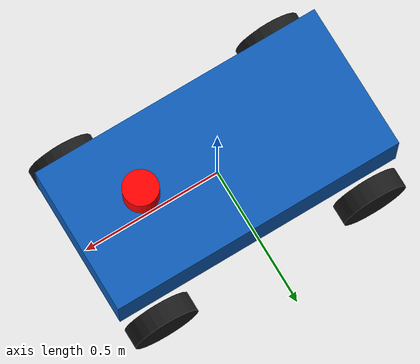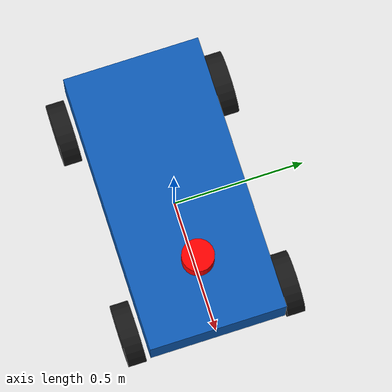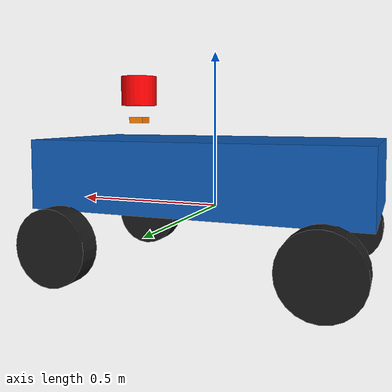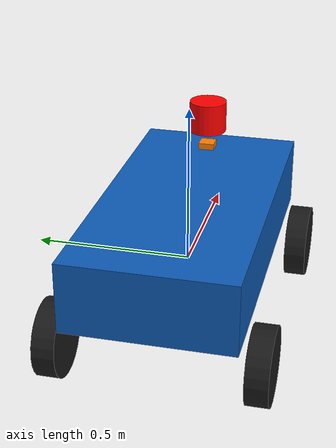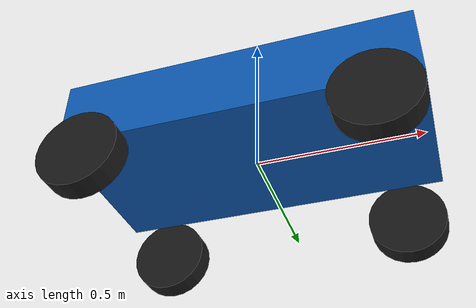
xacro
<?xml version="1.0"?>
<robot xmlns:xacro="http://www.ros.org/wiki/xacro" name="my_robot">

  <!-- base_link (каркаc машины) params -->
  <xacro:property name="base_length" value="1.05"/>
  <xacro:property name="base_width" value="0.52"/>
  <xacro:property name="base_height" value="0.22"/>

  <xacro:property name="base_mass" value="12.0" />

  <!-- моменты инерции (сопротивление ВОКРУГ заданной оси) (>0) -->
  <!--
    точный коэффициент пропорциональности между приложенным моментом силы и resulting угловым ускорением.
    ixx = ∫ρ(y^2+z^2)dV, ρ*dV = mass (мин.часть)
   -->
  <xacro:property name="base_ixx" value="0.55" />
  <xacro:property name="base_iyy" value="1.10" />
  <xacro:property name="base_izz" value="1.40" />

  <!-- ixy, ixz, iyz - центробежные моменты (не ограниен)-->
  <!--
    мера асимметрии распределения массы относительно осей координат:
    ixy = −∫ρ⋅x⋅ydV
    =0, при условии симметрии объекта
  -->

  <!-- каркас машины -->
  <link name="base_link">

    <!-- визуал -->
    <visual>
      <!-- координаты base_link -->
      <origin xyz="0 0 ${base_height / 2.0}" rpy="0.0 0.0 0.0"/>

      <!-- размерность каркаса -->
      <geometry>
        <box size="${base_length} ${base_width} ${base_height}"/>
      </geometry>
      <!-- материал и цвет -->
      <material name="base_blue">
        <color rgba="0.05 0.36 0.72 1.0"/>
      </material>
    </visual>

    <!-- коллизии (bbox) -->
    <collision>
      <origin xyz="0 0 ${base_height / 2.0}" rpy="0.0 0.0 0.0"/>
      <geometry>
        <box size="${base_length} ${base_width} ${base_height}"/>
      </geometry>
    </collision>

    <!-- инерция (физика объекта) -->
    <inertial>
      <mass value="${base_mass}"/>
      <inertia
        ixx="${base_ixx}"
        ixy="0.0"
        ixz="0.0"
        iyy="${base_iyy}"
        iyz="0.0"
        izz="${base_izz}"
      />
    </inertial>
  </link>

  <!-- lidar_link (лидар) params-->
  <xacro:property name="lidar_x" value="0.28" />
  <xacro:property name="lidar_z" value="0.38" />
  <xacro:property name="lidar_r" value="0.06" />
  <xacro:property name="lidar_l" value="0.1" />

  <!-- lidar_link -->
  <link name="lidar_link">
    <visual>
      <geometry>
       <cylinder radius="${lidar_r}" length="${lidar_l}"/>
      </geometry>
      <material name="lidar_red">
        <color rgba="1.0 0.0 0.0 1.0"/>
      </material>
    </visual>
    <collision>
      <geometry>
       <cylinder radius="${lidar_r}" length="${lidar_l}"/>
      </geometry>
    </collision>
    <inertial>
        <mass value="0.033"/>
        <inertia
          ixx="0.0003"
          ixy="0"
          ixz="0"
          iyy="0.0003"
          iyz="0"
          izz="0.0003"
        />
    </inertial>
  </link>

  <!-- base + lidar-->
  <joint name="lidar_join" type="fixed">
    <parent link="base_link"/>
    <child link="lidar_link"/>
    <origin xyz="${lidar_x} 0.0 ${lidar_z}" rpy="0.0 0.0 0.0"/>
  </joint>

  <!-- imu_link (инерциальный измерительный модуль) params -->
  <xacro:property name="imu_size" value="0.05" />

  <!-- imu_link -->
  <link name="imu_link">
    <visual>
      <geometry>
        <box size="${imu_size} ${imu_size} ${imu_size * 0.4}" />
      </geometry>
      <material name="imu_orange">
        <color rgba="1.0 0.5 0.0 1.0" />
      </material>
    </visual>
    <collision>
      <geometry>
        <box size="${imu_size} ${imu_size} ${imu_size * 0.4}" />
      </geometry>
    </collision>
    <inertial>
      <mass value="0.033" />
      <inertia ixx="0.0003" ixy="0" ixz="0" iyy="0.0003" iyz="0" izz="0.0003" />
    </inertial>
  </link>

  <!-- base + imu -->
  <joint name="imu_joint" type="fixed">
    <parent link="base_link" />
    <child link="imu_link" />
    <origin xyz="${lidar_x} 0 ${lidar_z - 0.1}" rpy="0 0 0" />
  </joint>

  <!-- wheel_link (колесо) params -->
  <xacro:property name="wheel_radius" value="0.12" />
  <xacro:property name="wheel_width" value="0.07" />
  <xacro:property name="wheel_mass" value="0.8" />
  <xacro:property name="wheel_ixx" value="0.006" />
  <xacro:property name="wheel_iyy" value="0.003" />
  <xacro:property name="wheel_izz" value="0.006" />

  <!-- wheel_macro -->
  <xacro:macro name="wheel" params="prefix parent x y z_offset">
    <link name="${prefix}_wheel">
      <visual>
        <!-- Колесо лежит на боку, поэтому поворачиваем геометрию -->
        <origin xyz="0 0 0" rpy="${pi/2} 0 0" />
        <geometry>
          <cylinder radius="${wheel_radius}" length="${wheel_width}" />
        </geometry>
        <material name="wheel_dark">
          <color rgba="0.1 0.1 0.1 1.0" />
        </material>
      </visual>
      <collision>
        <origin xyz="0 0 0" rpy="${pi/2} 0 0" />
        <geometry>
          <cylinder radius="${wheel_radius}" length="${wheel_width}" />
        </geometry>
      </collision>
      <inertial>
        <mass value="${wheel_mass}" />
        <inertia ixx="${wheel_ixx}" ixy="0" ixz="0" iyy="${wheel_iyy}" iyz="0" izz="${wheel_izz}" />
      </inertial>
    </link>

    <joint name="${prefix}_wheel_joint" type="continuous">
      <parent link="${parent}" />
      <child link="${prefix}_wheel" />
      <!-- Сдвигаем колесо вниз от центра корпуса на радиус + зазор -->
      <origin xyz="${x} ${y} ${z_offset}" rpy="0 0 0" />
      <!-- Ось вращения - ось Y локальной системы колеса -->
      <axis xyz="0 1 0" />
    </joint>
  </xacro:macro>

  <!-- передние колеса -->
  <xacro:wheel prefix="front_left" parent="base_link" x="0.4" y="0.31" z_offset="-0.1" />
  <xacro:wheel prefix="front_right" parent="base_link" x="0.4" y="-0.31" z_offset="-0.1" />
  <!-- задние колеса -->
  <xacro:wheel prefix="rear_left" parent="base_link" x="-0.4" y="0.31" z_offset="-0.1" />
  <xacro:wheel prefix="rear_right" parent="base_link" x="-0.4" y="-0.31" z_offset="-0.1" />

</robot>
